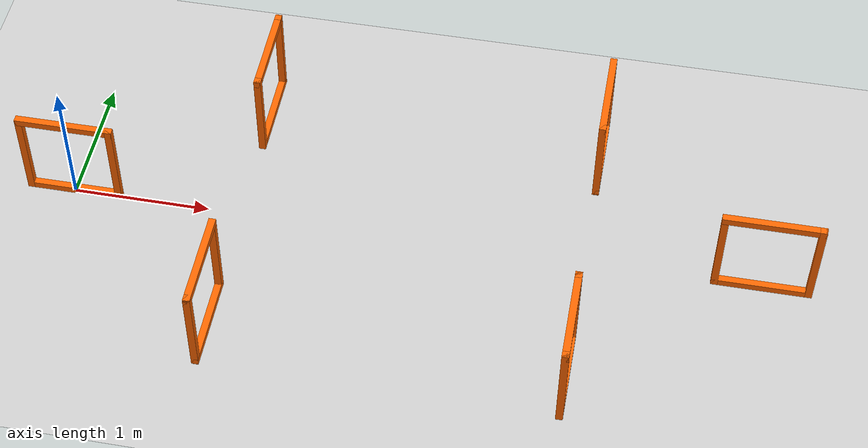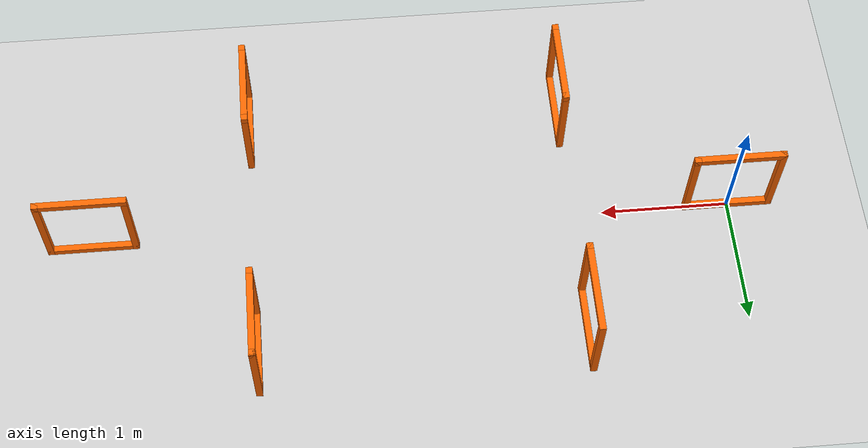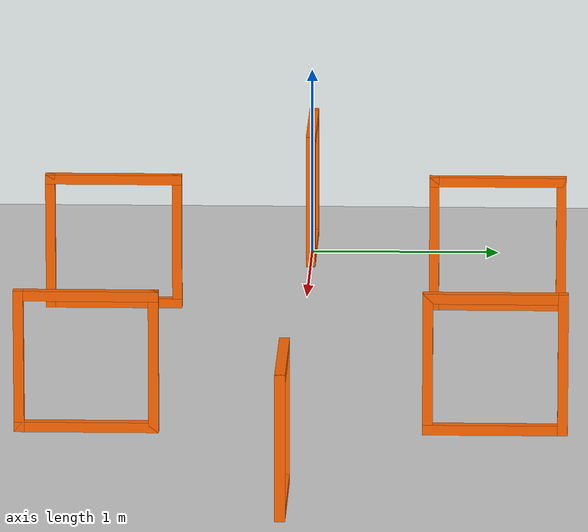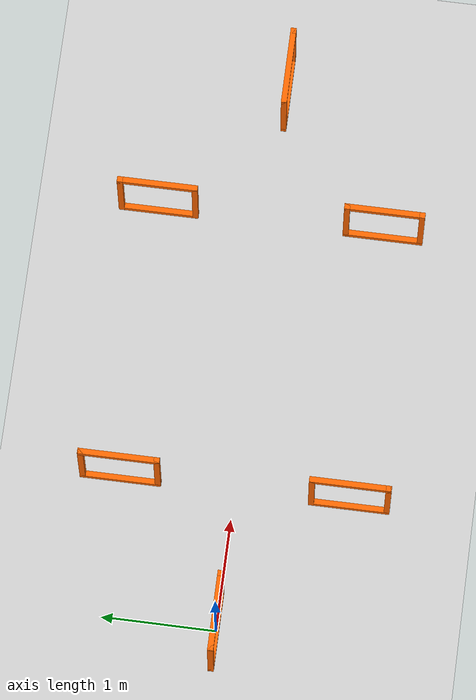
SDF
<?xml version="1.0" ?>
<sdf version="1.9">
  <world name="lemniscate">
    <physics type="ode">
      <max_step_size>0.001</max_step_size>
      <real_time_factor>1.0</real_time_factor>
      <real_time_update_rate>1000</real_time_update_rate>
    </physics>
    <plugin name='gz::sim::systems::Physics' filename='libgz-sim-physics-system.so'/>
    <plugin name='gz::sim::systems::UserCommands' filename='libgz-sim-user-commands-system.so'/>
    <plugin name='gz::sim::systems::SceneBroadcaster' filename='libgz-sim-scene-broadcaster-system.so'/>
    <plugin name='gz::sim::systems::Contact' filename='libgz-sim-contact-system.so'/>
    <plugin name='gz::sim::systems::Imu' filename='libgz-sim-imu-system.so'/>
    <plugin name='gz::sim::systems::AirPressure' filename='libgz-sim-air-pressure-system.so'/>
    <plugin name='gz::sim::systems::Sensors' filename='libgz-sim-sensors-system.so'>
      <render_engine>ogre2</render_engine>
    </plugin>
    <gravity>0 0 -9.80665</gravity>
    <magnetic_field>6e-06 2.3e-05 -4.2e-05</magnetic_field>
    <atmosphere type='adiabatic'/>
    <scene>
      <grid>false</grid>
      <ambient>0.4 0.4 0.4 1</ambient>
      <background>0.7 0.7 0.7 1</background>
      <shadows>true</shadows>
    </scene>

    <model name="ground_plane">
      <static>true</static>
      <link name="link">
        <collision name="collision">
          <geometry><plane><normal>0 0 1</normal><size>100 100</size></plane></geometry>
        </collision>
        <visual name="visual">
          <geometry><plane><normal>0 0 1</normal><size>100 100</size></plane></geometry>
          <material>
            <ambient>0.8 0.8 0.8 1</ambient>
            <diffuse>0.8 0.8 0.8 1</diffuse>
            <specular>0.8 0.8 0.8 1</specular>
          </material>
        </visual>
      </link>
    </model>

    <light type="directional" name="sun">
      <cast_shadows>true</cast_shadows>
      <pose>0 0 10 0 0 0</pose>
      <diffuse>0.8 0.8 0.8 1</diffuse>
      <specular>0.2 0.2 0.2 1</specular>
      <direction>-0.5 0.1 -0.9</direction>
    </light>

    <include>
      <uri>model://drone_gate</uri>
      <name>gate_1</name>
      <pose>3.75 1.0 0 0 0 0</pose>
    </include>

    <include>
      <uri>model://drone_gate</uri>
      <name>gate_2</name>
      <pose>5.0 0.0 0 0 0 1.5708</pose>
    </include>

    <include>
      <uri>model://drone_gate</uri>
      <name>gate_3</name>
      <pose>3.75 -1.0 0 0 0 0</pose>
    </include>

    <include>
      <uri>model://drone_gate</uri>
      <name>gate_4</name>
      <pose>1.25 -1.0 0 0 0 0</pose>
    </include>

    <include>
      <uri>model://drone_gate</uri>
      <name>gate_5</name>
      <pose>0.0 0.0 0 0 0 1.5708</pose>
    </include>

    <include>
      <uri>model://drone_gate</uri>
      <name>gate_6</name>
      <pose>1.25 1.0 0 0 0 0</pose>
    </include>

  </world>
</sdf>

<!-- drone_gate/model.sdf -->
<sdf version="1.9">
  <model name="drone_gate">
    <static>true</static>
    <link name="gate_frame">

      <!-- Left Post -->
      <collision name="left_post_collision">
        <pose>0 0.33 0.355 0 0 0</pose>
        <geometry><box><size>0.05 0.05 0.71</size></box></geometry>
      </collision>
      <visual name="left_post_visual">
        <pose>0 0.33 0.355 0 0 0</pose>
        <geometry><box><size>0.05 0.05 0.71</size></box></geometry>
        <material>
          <ambient>1.0 0.4 0.0 1</ambient>
          <diffuse>1.0 0.4 0.0 1</diffuse>
          <specular>0.2 0.2 0.2 1</specular>
          <emissive>0.8 0.3 0.0 1</emissive>
        </material>
      </visual>

      <!-- Right Post -->
      <collision name="right_post_collision">
        <pose>0 -0.33 0.355 0 0 0</pose>
        <geometry><box><size>0.05 0.05 0.71</size></box></geometry>
      </collision>
      <visual name="right_post_visual">
        <pose>0 -0.33 0.355 0 0 0</pose>
        <geometry><box><size>0.05 0.05 0.71</size></box></geometry>
        <material>
          <ambient>1.0 0.4 0.0 1</ambient>
          <diffuse>1.0 0.4 0.0 1</diffuse>
          <specular>0.2 0.2 0.2 1</specular>
          <emissive>0.8 0.3 0.0 1</emissive>
        </material>
      </visual>

      <!-- Top Bar -->
      <collision name="top_bar_collision">
        <pose>0 0 0.685 0 0 0</pose>
        <geometry><box><size>0.05 0.71 0.05</size></box></geometry>
      </collision>
      <visual name="top_bar_visual">
        <pose>0 0 0.685 0 0 0</pose>
        <geometry><box><size>0.05 0.71 0.05</size></box></geometry>
        <material>
          <ambient>1.0 0.4 0.0 1</ambient>
          <diffuse>1.0 0.4 0.0 1</diffuse>
          <specular>0.2 0.2 0.2 1</specular>
          <emissive>0.8 0.3 0.0 1</emissive>
        </material>
      </visual>

      <!-- Bottom Bar -->
      <collision name="bottom_bar_collision">
        <pose>0 0 0.025 0 0 0</pose>
        <geometry><box><size>0.05 0.71 0.05</size></box></geometry>
      </collision>
      <visual name="bottom_bar_visual">
        <pose>0 0 0.025 0 0 0</pose>
        <geometry><box><size>0.05 0.71 0.05</size></box></geometry>
        <material>
          <ambient>1.0 0.4 0.0 1</ambient>
          <diffuse>1.0 0.4 0.0 1</diffuse>
          <specular>0.2 0.2 0.2 1</specular>
          <emissive>0.8 0.3 0.0 1</emissive>
        </material>
      </visual>

    </link>
  </model>
</sdf>
